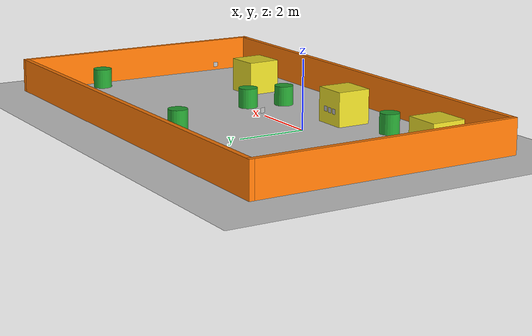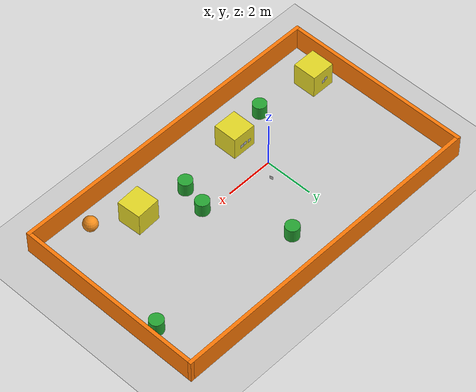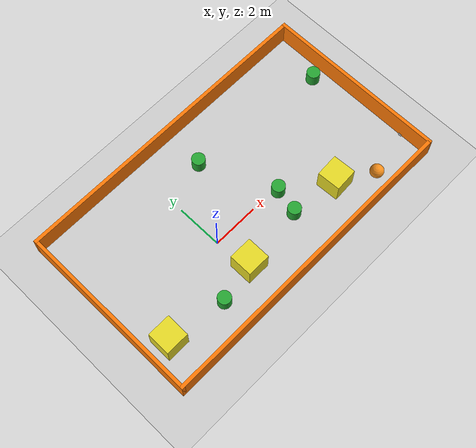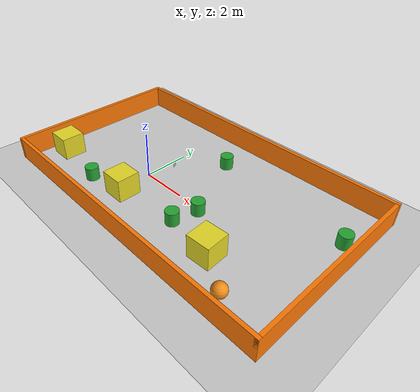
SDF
<sdf version="1.7">
 <world name="default">
  <light name="sun" type="directional">
   <pose>0 0 10 0 -0 0</pose>
   <diffuse>0.8 0.8 0.8 1</diffuse>
   <specular>0.2 0.2 0.2 1</specular>
   <attenuation>
    <range>1000</range>
    <constant>0.9</constant>
    <linear>0.01</linear>
    <quadratic>0.001</quadratic>
   </attenuation>
   <direction>-0.5 0.1 -0.9</direction>
   <spot><inner_angle>0</inner_angle><outer_angle>0</outer_angle><falloff>0</falloff></spot>
  </light>
  <model name="ground_plane">
   <static>1</static>
   <link name="link">
    <collision name="collision">
     <geometry><plane><normal>0 0 1</normal><size>100 100</size></plane></geometry>
     <surface><friction><ode><mu>100</mu><mu2>50</mu2></ode></friction></surface>
    </collision>
    <visual name="visual">
     <cast_shadows>0</cast_shadows>
     <geometry><plane><normal>0 0 1</normal><size>100 100</size></plane></geometry>
     <material>
      <script><uri>file://media/materials/scripts/gazebo.material</uri><name>Gazebo/Grey</name></script>
     </material>
    </visual>
   </link>
  </model>
  <gravity>0 0 -9.8</gravity>
  <magnetic_field>6e-06 2.3e-05 -4.2e-05</magnetic_field>
  <atmosphere type="adiabatic"/>
  <physics name="default_physics" default="0" type="ode">
   <max_step_size>0.001</max_step_size>
   <real_time_factor>1</real_time_factor>
   <real_time_update_rate>1000</real_time_update_rate>
  </physics>
  <scene><ambient>0.4 0.4 0.4 1</ambient><background>0.7 0.7 0.7 1</background><shadows>1</shadows></scene>
  <spherical_coordinates>
   <surface_model>EARTH_WGS84</surface_model>
   <latitude_deg>0</latitude_deg>
   <longitude_deg>0</longitude_deg>
   <elevation>0</elevation>
   <heading_deg>0</heading_deg>
  </spherical_coordinates>
  <model name="final_maze">
   <pose>1.8475 0.70908 0 0 -0 0</pose>
   <link name="Wall_0">
    <collision name="Wall_0_Collision">
     <geometry><box><size>8 0.15 1</size></box></geometry>
     <pose>0 0 0.5 0 -0 0</pose>
    </collision>
    <visual name="Wall_0_Visual">
     <pose>0 0 0.5 0 -0 0</pose>
     <geometry><box><size>8 0.15 1</size></box></geometry>
     <material>
      <script><uri>file://media/materials/scripts/gazebo.material</uri><name>Gazebo/Grey</name></script>
      <ambient>0.996078 0.47451 0.0196078 1</ambient>
     </material>
     <meta><layer>0</layer></meta>
    </visual>
    <pose>-6.8 0 0 0 -0 -1.5708</pose>
   </link>
   <link name="Wall_3">
    <collision name="Wall_3_Collision">
     <geometry><box><size>13.75 0.15 1</size></box></geometry>
     <pose>0 0 0.5 0 -0 0</pose>
    </collision>
    <visual name="Wall_3_Visual">
     <pose>0 0 0.5 0 -0 0</pose>
     <geometry><box><size>13.75 0.15 1</size></box></geometry>
     <material>
      <script><uri>file://media/materials/scripts/gazebo.material</uri><name>Gazebo/Grey</name></script>
      <ambient>0.996078 0.47451 0.0196078 1</ambient>
     </material>
     <meta><layer>0</layer></meta>
    </visual>
    <pose>-0 -3.925 0 0 -0 0</pose>
   </link>
   <link name="Wall_5">
    <collision name="Wall_5_Collision">
     <geometry><box><size>8 0.15 1</size></box></geometry>
     <pose>0 0 0.5 0 -0 0</pose>
    </collision>
    <visual name="Wall_5_Visual">
     <pose>0 0 0.5 0 -0 0</pose>
     <geometry><box><size>8 0.15 1</size></box></geometry>
     <material>
      <script><uri>file://media/materials/scripts/gazebo.material</uri><name>Gazebo/Grey</name></script>
      <ambient>0.996078 0.47451 0.0196078 1</ambient>
     </material>
     <meta><layer>0</layer></meta>
    </visual>
    <pose>6.8 0 0 0 -0 1.5708</pose>
   </link>
   <link name="Wall_6">
    <collision name="Wall_6_Collision">
     <geometry><box><size>13.75 0.15 1</size></box></geometry>
     <pose>0 0 0.5 0 -0 0</pose>
    </collision>
    <visual name="Wall_6_Visual">
     <pose>0 0 0.5 0 -0 0</pose>
     <geometry><box><size>13.75 0.15 1</size></box></geometry>
     <material>
      <script><uri>file://media/materials/scripts/gazebo.material</uri><name>Gazebo/Grey</name></script>
      <ambient>0.996078 0.47451 0.0196078 1</ambient>
     </material>
     <meta><layer>0</layer></meta>
    </visual>
    <pose>-0 3.925 0 0 -0 3.14159</pose>
   </link>
   <static>1</static>
  </model>
  <model name="unit_cylinder">
   <link name="link">
    <inertial>
     <mass>1</mass>
     <inertia><ixx>0.145833</ixx><ixy>0</ixy><ixz>0</ixz><iyy>0.145833</iyy><iyz>0</iyz><izz>0.125</izz></inertia>
    </inertial>
    <visual name="visual">
     <geometry><cylinder><radius>0.282119</radius><length>0.585064</length></cylinder></geometry>
     <material>
      <script><name>Gazebo/Green</name><uri>file://media/materials/scripts/gazebo.material</uri></script>
      <shader type="pixel"><normal_map>__default__</normal_map></shader>
      <ambient>0 1 0 1</ambient>
      <diffuse>0 1 0 1</diffuse>
      <specular>0.1 0.1 0.1 1</specular>
      <emissive>0 0 0 1</emissive>
     </material>
    </visual>
    <collision name="collision">
     <geometry><cylinder><radius>0.282119</radius><length>0.585064</length></cylinder></geometry>
     <surface>
      <friction>
       <ode><mu>1</mu><mu2>1</mu2><fdir1>0 0 0</fdir1><slip1>0</slip1><slip2>0</slip2></ode>
       <torsional>
        <coefficient>1</coefficient>
        <patch_radius>0</patch_radius>
        <surface_radius>0</surface_radius>
        <use_patch_radius>1</use_patch_radius>
        <ode><slip>0</slip></ode>
       </torsional>
      </friction>
      <bounce><restitution_coefficient>0</restitution_coefficient><threshold>1e+06</threshold></bounce>
      <contact>
       <collide_without_contact>0</collide_without_contact>
       <collide_without_contact_bitmask>1</collide_without_contact_bitmask>
       <collide_bitmask>1</collide_bitmask>
       <ode>
        <soft_cfm>0</soft_cfm>
        <soft_erp>0.2</soft_erp>
        <kp>1e+13</kp>
        <kd>1</kd>
        <max_vel>0.01</max_vel>
        <min_depth>0</min_depth>
       </ode>
       <bullet>
        <split_impulse>1</split_impulse>
        <split_impulse_penetration_threshold>-0.01</split_impulse_penetration_threshold>
        <soft_cfm>0</soft_cfm>
        <soft_erp>0.2</soft_erp>
        <kp>1e+13</kp>
        <kd>1</kd>
       </bullet>
      </contact>
     </surface>
    </collision>
   </link>
   <static>0</static>
   <pose>1.86573 2.90634 0.292527 -5e-06 -2e-06 0.476312</pose>
  </model>
  <model name="unit_cylinder_clone">
   <link name="link">
    <inertial>
     <mass>1</mass>
     <inertia><ixx>0.145833</ixx><ixy>0</ixy><ixz>0</ixz><iyy>0.145833</iyy><iyz>0</iyz><izz>0.125</izz></inertia>
    </inertial>
    <visual name="visual">
     <geometry><cylinder><radius>0.282119</radius><length>0.585064</length></cylinder></geometry>
     <material>
      <script><name>Gazebo/Green</name><uri>file://media/materials/scripts/gazebo.material</uri></script>
      <shader type="pixel"><normal_map>__default__</normal_map></shader>
      <ambient>0 1 0 1</ambient>
      <diffuse>0 1 0 1</diffuse>
      <specular>0.1 0.1 0.1 1</specular>
      <emissive>0 0 0 1</emissive>
     </material>
    </visual>
    <collision name="collision">
     <geometry><cylinder><radius>0.282119</radius><length>0.585064</length></cylinder></geometry>
     <surface>
      <friction>
       <ode><mu>1</mu><mu2>1</mu2><fdir1>0 0 0</fdir1><slip1>0</slip1><slip2>0</slip2></ode>
       <torsional>
        <coefficient>1</coefficient>
        <patch_radius>0</patch_radius>
        <surface_radius>0</surface_radius>
        <use_patch_radius>1</use_patch_radius>
        <ode><slip>0</slip></ode>
       </torsional>
      </friction>
      <bounce><restitution_coefficient>0</restitution_coefficient><threshold>1e+06</threshold></bounce>
      <contact>
       <collide_without_contact>0</collide_without_contact>
       <collide_without_contact_bitmask>1</collide_without_contact_bitmask>
       <collide_bitmask>1</collide_bitmask>
       <ode>
        <soft_cfm>0</soft_cfm>
        <soft_erp>0.2</soft_erp>
        <kp>1e+13</kp>
        <kd>1</kd>
        <max_vel>0.01</max_vel>
        <min_depth>0</min_depth>
       </ode>
       <bullet>
        <split_impulse>1</split_impulse>
        <split_impulse_penetration_threshold>-0.01</split_impulse_penetration_threshold>
        <soft_cfm>0</soft_cfm>
        <soft_erp>0.2</soft_erp>
        <kp>1e+13</kp>
        <kd>1</kd>
       </bullet>
      </contact>
     </surface>
    </collision>
   </link>
   <static>0</static>
   <pose>-1.48985 -1.86437 0.292525 -1e-06 -1e-06 0</pose>
  </model>
  <model name="unit_cylinder_clone_1">
   <link name="link">
    <inertial>
     <mass>1</mass>
     <inertia><ixx>0.145833</ixx><ixy>0</ixy><ixz>0</ixz><iyy>0.145833</iyy><iyz>0</iyz><izz>0.125</izz></inertia>
    </inertial>
    <visual name="visual">
     <geometry><cylinder><radius>0.282119</radius><length>0.585064</length></cylinder></geometry>
     <material>
      <script><name>Gazebo/Green</name><uri>file://media/materials/scripts/gazebo.material</uri></script>
      <shader type="pixel"><normal_map>__default__</normal_map></shader>
      <ambient>0 1 0 1</ambient>
      <diffuse>0 1 0 1</diffuse>
      <specular>0.1 0.1 0.1 1</specular>
      <emissive>0 0 0 1</emissive>
     </material>
    </visual>
    <collision name="collision">
     <geometry><cylinder><radius>0.282119</radius><length>0.585064</length></cylinder></geometry>
     <surface>
      <friction>
       <ode><mu>1</mu><mu2>1</mu2><fdir1>0 0 0</fdir1><slip1>0</slip1><slip2>0</slip2></ode>
       <torsional>
        <coefficient>1</coefficient>
        <patch_radius>0</patch_radius>
        <surface_radius>0</surface_radius>
        <use_patch_radius>1</use_patch_radius>
        <ode><slip>0</slip></ode>
       </torsional>
      </friction>
      <bounce><restitution_coefficient>0</restitution_coefficient><threshold>1e+06</threshold></bounce>
      <contact>
       <collide_without_contact>0</collide_without_contact>
       <collide_without_contact_bitmask>1</collide_without_contact_bitmask>
       <collide_bitmask>1</collide_bitmask>
       <ode>
        <soft_cfm>0</soft_cfm>
        <soft_erp>0.2</soft_erp>
        <kp>1e+13</kp>
        <kd>1</kd>
        <max_vel>0.01</max_vel>
        <min_depth>0</min_depth>
       </ode>
       <bullet>
        <split_impulse>1</split_impulse>
        <split_impulse_penetration_threshold>-0.01</split_impulse_penetration_threshold>
        <soft_cfm>0</soft_cfm>
        <soft_erp>0.2</soft_erp>
        <kp>1e+13</kp>
        <kd>1</kd>
       </bullet>
      </contact>
     </surface>
    </collision>
   </link>
   <static>0</static>
   <pose>3.23147 -0.165375 0.292532 0 -0 1.35779</pose>
  </model>
  <model name="unit_cylinder_clone_2">
   <link name="link">
    <inertial>
     <mass>1</mass>
     <inertia><ixx>0.145833</ixx><ixy>0</ixy><ixz>0</ixz><iyy>0.145833</iyy><iyz>0</iyz><izz>0.125</izz></inertia>
    </inertial>
    <visual name="visual">
     <geometry><cylinder><radius>0.282119</radius><length>0.585064</length></cylinder></geometry>
     <material>
      <script><name>Gazebo/Green</name><uri>file://media/materials/scripts/gazebo.material</uri></script>
      <shader type="pixel"><normal_map>__default__</normal_map></shader>
      <ambient>0 1 0 1</ambient>
      <diffuse>0 1 0 1</diffuse>
      <specular>0.1 0.1 0.1 1</specular>
      <emissive>0 0 0 1</emissive>
     </material>
    </visual>
    <collision name="collision">
     <geometry><cylinder><radius>0.282119</radius><length>0.585064</length></cylinder></geometry>
     <surface>
      <friction>
       <ode><mu>1</mu><mu2>1</mu2><fdir1>0 0 0</fdir1><slip1>0</slip1><slip2>0</slip2></ode>
       <torsional>
        <coefficient>1</coefficient>
        <patch_radius>0</patch_radius>
        <surface_radius>0</surface_radius>
        <use_patch_radius>1</use_patch_radius>
        <ode><slip>0</slip></ode>
       </torsional>
      </friction>
      <bounce><restitution_coefficient>0</restitution_coefficient><threshold>1e+06</threshold></bounce>
      <contact>
       <collide_without_contact>0</collide_without_contact>
       <collide_without_contact_bitmask>1</collide_without_contact_bitmask>
       <collide_bitmask>1</collide_bitmask>
       <ode>
        <soft_cfm>0</soft_cfm>
        <soft_erp>0.2</soft_erp>
        <kp>1e+13</kp>
        <kd>1</kd>
        <max_vel>0.01</max_vel>
        <min_depth>0</min_depth>
       </ode>
       <bullet>
        <split_impulse>1</split_impulse>
        <split_impulse_penetration_threshold>-0.01</split_impulse_penetration_threshold>
        <soft_cfm>0</soft_cfm>
        <soft_erp>0.2</soft_erp>
        <kp>1e+13</kp>
        <kd>1</kd>
       </bullet>
      </contact>
     </surface>
    </collision>
   </link>
   <static>0</static>
   <pose>8.00615 2.35358 0.292527 4e-06 5e-06 1.42852</pose>
  </model>
  <model name="unit_cylinder_clone_3">
   <link name="link">
    <inertial>
     <mass>1</mass>
     <inertia><ixx>0.145833</ixx><ixy>0</ixy><ixz>0</ixz><iyy>0.145833</iyy><iyz>0</iyz><izz>0.125</izz></inertia>
    </inertial>
    <visual name="visual">
     <geometry><cylinder><radius>0.282119</radius><length>0.585064</length></cylinder></geometry>
     <material>
      <script><name>Gazebo/Green</name><uri>file://media/materials/scripts/gazebo.material</uri></script>
      <shader type="pixel"><normal_map>__default__</normal_map></shader>
      <ambient>0 1 0 1</ambient>
      <diffuse>0 1 0 1</diffuse>
      <specular>0.1 0.1 0.1 1</specular>
      <emissive>0 0 0 1</emissive>
     </material>
    </visual>
    <collision name="collision">
     <geometry><cylinder><radius>0.282119</radius><length>0.585064</length></cylinder></geometry>
     <surface>
      <friction>
       <ode><mu>1</mu><mu2>1</mu2><fdir1>0 0 0</fdir1><slip1>0</slip1><slip2>0</slip2></ode>
       <torsional>
        <coefficient>1</coefficient>
        <patch_radius>0</patch_radius>
        <surface_radius>0</surface_radius>
        <use_patch_radius>1</use_patch_radius>
        <ode><slip>0</slip></ode>
       </torsional>
      </friction>
      <bounce><restitution_coefficient>0</restitution_coefficient><threshold>1e+06</threshold></bounce>
      <contact>
       <collide_without_contact>0</collide_without_contact>
       <collide_without_contact_bitmask>1</collide_without_contact_bitmask>
       <collide_bitmask>1</collide_bitmask>
       <ode>
        <soft_cfm>0</soft_cfm>
        <soft_erp>0.2</soft_erp>
        <kp>1e+13</kp>
        <kd>1</kd>
        <max_vel>0.01</max_vel>
        <min_depth>0</min_depth>
       </ode>
       <bullet>
        <split_impulse>1</split_impulse>
        <split_impulse_penetration_threshold>-0.01</split_impulse_penetration_threshold>
        <soft_cfm>0</soft_cfm>
        <soft_erp>0.2</soft_erp>
        <kp>1e+13</kp>
        <kd>1</kd>
       </bullet>
      </contact>
     </surface>
    </collision>
   </link>
   <static>0</static>
   <pose>2.97756 -1.25738 0.292529 1e-06 1e-06 0</pose>
  </model>
  <model name="aruco_marker_0">
   <static>0</static>
   <link name="link">
    <gravity>0</gravity>
    <inertial>
     <mass>0.001</mass>
     <inertia>
      <ixx>3.75e-06</ixx>
      <ixy>0</ixy>
      <ixz>0</ixz>
      <iyy>1.875e-06</iyy>
      <iyz>0</iyz>
      <izz>1.875e-06</izz>
     </inertia>
    </inertial>
    <visual name="front_visual">
     <pose>5e-05 0 0 0 -0 0</pose>
     <geometry><box><size>0.0001 0.15 0.15</size></box></geometry>
     <material>
      <script>
       <uri>model://aruco_marker_0/materials/scripts</uri>
       <uri>model://aruco_marker_0/materials/textures</uri>
       <name>aruco_marker_0</name>
      </script>
     </material>
    </visual>
    <visual name="rear_visual">
     <pose>-5e-05 0 0 0 -0 0</pose>
     <geometry><box><size>0.0001 0.15 0.15</size></box></geometry>
    </visual>
    <collision name="collision"><geometry><box><size>0.0001 0.15 0.15</size></box></geometry></collision>
   </link>
   <pose>0.34542 -0.986233 0.43168 0 0 -1.5707</pose>
  </model>
  <model name="aruco_marker_1">
   <static>0</static>
   <link name="link">
    <gravity>0</gravity>
    <inertial>
     <mass>0.001</mass>
     <inertia>
      <ixx>3.75e-06</ixx>
      <ixy>0</ixy>
      <ixz>0</ixz>
      <iyy>1.875e-06</iyy>
      <iyz>0</iyz>
      <izz>1.875e-06</izz>
     </inertia>
    </inertial>
    <visual name="front_visual">
     <pose>5e-05 0 0 0 -0 0</pose>
     <geometry><box><size>0.0001 0.15 0.15</size></box></geometry>
     <material>
      <script>
       <uri>model://aruco_marker_1/materials/scripts</uri>
       <uri>model://aruco_marker_1/materials/textures</uri>
       <name>aruco_marker_1</name>
      </script>
     </material>
    </visual>
    <visual name="rear_visual">
     <pose>-5e-05 0 0 0 -0 0</pose>
     <geometry><box><size>0.0001 0.15 0.15</size></box></geometry>
    </visual>
    <collision name="collision"><geometry><box><size>0.0001 0.15 0.15</size></box></geometry></collision>
   </link>
   <pose>-3.93233 -0.941869 0.529613 0 0 -1.5707</pose>
  </model>
  <model name="aruco_marker_2">
   <static>0</static>
   <link name="link">
    <gravity>0</gravity>
    <inertial>
     <mass>0.001</mass>
     <inertia>
      <ixx>3.75e-06</ixx>
      <ixy>0</ixy>
      <ixz>0</ixz>
      <iyy>1.875e-06</iyy>
      <iyz>0</iyz>
      <izz>1.875e-06</izz>
     </inertia>
    </inertial>
    <visual name="front_visual">
     <pose>5e-05 0 0 0 -0 0</pose>
     <geometry><box><size>0.0001 0.15 0.15</size></box></geometry>
     <material>
      <script>
       <uri>model://aruco_marker_2/materials/scripts</uri>
       <uri>model://aruco_marker_2/materials/textures</uri>
       <name>aruco_marker_2</name>
      </script>
     </material>
    </visual>
    <visual name="rear_visual">
     <pose>-5e-05 0 0 0 -0 0</pose>
     <geometry><box><size>0.0001 0.15 0.15</size></box></geometry>
    </visual>
    <collision name="collision"><geometry><box><size>0.0001 0.15 0.15</size></box></geometry></collision>
   </link>
   <pose>8.46068 -2 0.2 0 0 -3.14159</pose>
  </model>
  <model name="aruco_marker_3">
   <static>0</static>
   <link name="link">
    <gravity>0</gravity>
    <inertial>
     <mass>0.001</mass>
     <inertia>
      <ixx>3.75e-06</ixx>
      <ixy>0</ixy>
      <ixz>0</ixz>
      <iyy>1.875e-06</iyy>
      <iyz>0</iyz>
      <izz>1.875e-06</izz>
     </inertia>
    </inertial>
    <visual name="front_visual">
     <pose>5e-05 0 0 0 -0 0</pose>
     <geometry><box><size>0.0001 0.15 0.15</size></box></geometry>
     <material>
      <script>
       <uri>model://aruco_marker_3/materials/scripts</uri>
       <uri>model://aruco_marker_3/materials/textures</uri>
       <name>aruco_marker_3</name>
      </script>
     </material>
    </visual>
    <visual name="rear_visual">
     <pose>-5e-05 0 0 0 -0 0</pose>
     <geometry><box><size>0.0001 0.15 0.15</size></box></geometry>
    </visual>
    <collision name="collision"><geometry><box><size>0.0001 0.15 0.15</size></box></geometry></collision>
   </link>
   <pose>0.750985 0.839416 0.512839 0.002079 -0.005585 -2.92463</pose>
  </model>
  <model name="unit_box">
   <link name="link">
    <inertial>
     <mass>1</mass>
     <inertia>
      <ixx>0.166667</ixx>
      <ixy>0</ixy>
      <ixz>0</ixz>
      <iyy>0.166667</iyy>
      <iyz>0</iyz>
      <izz>0.166667</izz>
     </inertia>
    </inertial>
    <visual name="visual">
     <geometry><box><size>1 1 1</size></box></geometry>
     <material>
      <script><name>Gazebo/Yellow</name><uri>file://media/materials/scripts/gazebo.material</uri></script>
      <shader type="pixel"><normal_map>__default__</normal_map></shader>
      <ambient>1 1 0 1</ambient>
      <diffuse>1 1 0 1</diffuse>
      <emissive>0 0 0 1</emissive>
     </material>
    </visual>
    <collision name="collision">
     <geometry><box><size>1 1 1</size></box></geometry>
     <surface>
      <friction>
       <ode><mu>1</mu><mu2>1</mu2><fdir1>0 0 0</fdir1><slip1>0</slip1><slip2>0</slip2></ode>
       <torsional>
        <coefficient>1</coefficient>
        <patch_radius>0</patch_radius>
        <surface_radius>0</surface_radius>
        <use_patch_radius>1</use_patch_radius>
        <ode><slip>0</slip></ode>
       </torsional>
      </friction>
      <bounce><restitution_coefficient>0</restitution_coefficient><threshold>1e+06</threshold></bounce>
      <contact>
       <collide_without_contact>0</collide_without_contact>
       <collide_without_contact_bitmask>1</collide_without_contact_bitmask>
       <collide_bitmask>1</collide_bitmask>
       <ode>
        <soft_cfm>0</soft_cfm>
        <soft_erp>0.2</soft_erp>
        <kp>1e+13</kp>
        <kd>1</kd>
        <max_vel>0.01</max_vel>
        <min_depth>0</min_depth>
       </ode>
       <bullet>
        <split_impulse>1</split_impulse>
        <split_impulse_penetration_threshold>-0.01</split_impulse_penetration_threshold>
        <soft_cfm>0</soft_cfm>
        <soft_erp>0.2</soft_erp>
        <kp>1e+13</kp>
        <kd>1</kd>
       </bullet>
      </contact>
     </surface>
    </collision>
   </link>
   <static>0</static>
   <pose>-3.98543 -1.49501 0.499995 1e-05 0 -0.00133</pose>
  </model>
  <model name="unit_box_1">
   <link name="link">
    <inertial>
     <mass>1</mass>
     <inertia>
      <ixx>0.166667</ixx>
      <ixy>0</ixy>
      <ixz>0</ixz>
      <iyy>0.166667</iyy>
      <iyz>0</iyz>
      <izz>0.166667</izz>
     </inertia>
    </inertial>
    <visual name="visual">
     <geometry><box><size>1 1 1</size></box></geometry>
     <material>
      <script><name>Gazebo/Yellow</name><uri>file://media/materials/scripts/gazebo.material</uri></script>
      <shader type="pixel"><normal_map>__default__</normal_map></shader>
      <ambient>1 1 0 1</ambient>
      <diffuse>1 1 0 1</diffuse>
      <emissive>0 0 0 1</emissive>
     </material>
    </visual>
    <collision name="collision">
     <geometry><box><size>1 1 1</size></box></geometry>
     <surface>
      <friction>
       <ode><mu>1</mu><mu2>1</mu2><fdir1>0 0 0</fdir1><slip1>0</slip1><slip2>0</slip2></ode>
       <torsional>
        <coefficient>1</coefficient>
        <patch_radius>0</patch_radius>
        <surface_radius>0</surface_radius>
        <use_patch_radius>1</use_patch_radius>
        <ode><slip>0</slip></ode>
       </torsional>
      </friction>
      <bounce><restitution_coefficient>0</restitution_coefficient><threshold>1e+06</threshold></bounce>
      <contact>
       <collide_without_contact>0</collide_without_contact>
       <collide_without_contact_bitmask>1</collide_without_contact_bitmask>
       <collide_bitmask>1</collide_bitmask>
       <ode>
        <soft_cfm>0</soft_cfm>
        <soft_erp>0.2</soft_erp>
        <kp>1e+13</kp>
        <kd>1</kd>
        <max_vel>0.01</max_vel>
        <min_depth>0</min_depth>
       </ode>
       <bullet>
        <split_impulse>1</split_impulse>
        <split_impulse_penetration_threshold>-0.01</split_impulse_penetration_threshold>
        <soft_cfm>0</soft_cfm>
        <soft_erp>0.2</soft_erp>
        <kp>1e+13</kp>
        <kd>1</kd>
       </bullet>
      </contact>
     </surface>
    </collision>
   </link>
   <static>0</static>
   <pose>0.202358 -1.51471 0.499995 1e-05 -0 -0.001429</pose>
  </model>
  <model name="unit_box_2">
   <link name="link">
    <inertial>
     <mass>1</mass>
     <inertia>
      <ixx>0.166667</ixx>
      <ixy>0</ixy>
      <ixz>0</ixz>
      <iyy>0.166667</iyy>
      <iyz>0</iyz>
      <izz>0.166667</izz>
     </inertia>
    </inertial>
    <visual name="visual">
     <geometry><box><size>1 1 1</size></box></geometry>
     <material>
      <script><name>Gazebo/Yellow</name><uri>file://media/materials/scripts/gazebo.material</uri></script>
      <shader type="pixel"><normal_map>__default__</normal_map></shader>
      <ambient>1 1 0 1</ambient>
      <diffuse>1 1 0 1</diffuse>
      <emissive>0 0 0 1</emissive>
     </material>
    </visual>
    <collision name="collision">
     <geometry><box><size>1 1 1</size></box></geometry>
     <surface>
      <friction>
       <ode><mu>1</mu><mu2>1</mu2><fdir1>0 0 0</fdir1><slip1>0</slip1><slip2>0</slip2></ode>
       <torsional>
        <coefficient>1</coefficient>
        <patch_radius>0</patch_radius>
        <surface_radius>0</surface_radius>
        <use_patch_radius>1</use_patch_radius>
        <ode><slip>0</slip></ode>
       </torsional>
      </friction>
      <bounce><restitution_coefficient>0</restitution_coefficient><threshold>1e+06</threshold></bounce>
      <contact>
       <collide_without_contact>0</collide_without_contact>
       <collide_without_contact_bitmask>1</collide_without_contact_bitmask>
       <collide_bitmask>1</collide_bitmask>
       <ode>
        <soft_cfm>0</soft_cfm>
        <soft_erp>0.2</soft_erp>
        <kp>1e+13</kp>
        <kd>1</kd>
        <max_vel>0.01</max_vel>
        <min_depth>0</min_depth>
       </ode>
       <bullet>
        <split_impulse>1</split_impulse>
        <split_impulse_penetration_threshold>-0.01</split_impulse_penetration_threshold>
        <soft_cfm>0</soft_cfm>
        <soft_erp>0.2</soft_erp>
        <kp>1e+13</kp>
        <kd>1</kd>
       </bullet>
      </contact>
     </surface>
    </collision>
   </link>
   <static>0</static>
   <pose>5.06215 -1.50992 0.499995 -1e-05 -0 0.055634</pose>
  </model>
  <model name="unit_sphere">
   <link name="link">
    <inertial>
     <mass>1</mass>
     <inertia><ixx>0.1</ixx><ixy>0</ixy><ixz>0</ixz><iyy>0.1</iyy><iyz>0</iyz><izz>0.1</izz></inertia>
    </inertial>
    <visual name="visual">
     <geometry><sphere><radius>0.291395</radius></sphere></geometry>
     <material>
      <script><name>Gazebo/Orange</name><uri>file://media/materials/scripts/gazebo.material</uri></script>
      <shader type="pixel"><normal_map>__default__</normal_map></shader>
      <ambient>1 0.509 0.047 1</ambient>
      <diffuse>1 0.509 0.047 1</diffuse>
      <specular>0.5 0.5 0.5 1</specular>
      <emissive>0 0 0 1</emissive>
     </material>
    </visual>
    <collision name="collision">
     <geometry><sphere><radius>0.291395</radius></sphere></geometry>
     <surface>
      <friction>
       <ode><mu>1</mu><mu2>1</mu2><fdir1>0 0 0</fdir1><slip1>0</slip1><slip2>0</slip2></ode>
       <torsional>
        <coefficient>1</coefficient>
        <patch_radius>0</patch_radius>
        <surface_radius>0</surface_radius>
        <use_patch_radius>1</use_patch_radius>
        <ode><slip>0</slip></ode>
       </torsional>
      </friction>
      <bounce><restitution_coefficient>0</restitution_coefficient><threshold>1e+06</threshold></bounce>
      <contact>
       <collide_without_contact>0</collide_without_contact>
       <collide_without_contact_bitmask>1</collide_without_contact_bitmask>
       <collide_bitmask>1</collide_bitmask>
       <ode>
        <soft_cfm>0</soft_cfm>
        <soft_erp>0.2</soft_erp>
        <kp>1e+13</kp>
        <kd>1</kd>
        <max_vel>0.01</max_vel>
        <min_depth>0</min_depth>
       </ode>
       <bullet>
        <split_impulse>1</split_impulse>
        <split_impulse_penetration_threshold>-0.01</split_impulse_penetration_threshold>
        <soft_cfm>0</soft_cfm>
        <soft_erp>0.2</soft_erp>
        <kp>1e+13</kp>
        <kd>1</kd>
       </bullet>
      </contact>
     </surface>
    </collision>
   </link>
   <static>0</static>
   <pose>6.53534 -2.42522 0.291395 0 -0 0</pose>
  </model>
  <audio><device>default</device></audio>
  <model name="aruco_marker_1_clone">
   <static>0</static>
   <link name="link">
    <gravity>0</gravity>
    <inertial>
     <mass>0.001</mass>
     <inertia>
      <ixx>3.75e-06</ixx>
      <ixy>0</ixy>
      <ixz>0</ixz>
      <iyy>1.875e-06</iyy>
      <iyz>0</iyz>
      <izz>1.875e-06</izz>
     </inertia>
    </inertial>
    <visual name="front_visual">
     <pose>5e-05 0 0 0 -0 0</pose>
     <geometry><box><size>0.0001 0.15 0.15</size></box></geometry>
     <material>
      <script>
       <uri>model://aruco_marker_1/materials/scripts</uri>
       <uri>model://aruco_marker_1/materials/textures</uri>
       <name>aruco_marker_1</name>
      </script>
     </material>
    </visual>
    <visual name="rear_visual">
     <pose>-5e-05 0 0 0 -0 0</pose>
     <geometry><box><size>0.0001 0.15 0.15</size></box></geometry>
    </visual>
    <collision name="collision"><geometry><box><size>0.0001 0.15 0.15</size></box></geometry></collision>
   </link>
   <pose>-4.12977 -0.992253 0.515453 0 0 -1.5707</pose>
  </model>
  <model name="aruco_marker_0_clone">
   <static>0</static>
   <link name="link">
    <gravity>0</gravity>
    <inertial>
     <mass>0.001</mass>
     <inertia>
      <ixx>3.75e-06</ixx>
      <ixy>0</ixy>
      <ixz>0</ixz>
      <iyy>1.875e-06</iyy>
      <iyz>0</iyz>
      <izz>1.875e-06</izz>
     </inertia>
    </inertial>
    <visual name="front_visual">
     <pose>5e-05 0 0 0 -0 0</pose>
     <geometry><box><size>0.0001 0.15 0.15</size></box></geometry>
     <material>
      <script>
       <uri>model://aruco_marker_0/materials/scripts</uri>
       <uri>model://aruco_marker_0/materials/textures</uri>
       <name>aruco_marker_0</name>
      </script>
     </material>
    </visual>
    <visual name="rear_visual">
     <pose>-5e-05 0 0 0 -0 0</pose>
     <geometry><box><size>0.0001 0.15 0.15</size></box></geometry>
    </visual>
    <collision name="collision"><geometry><box><size>0.0001 0.15 0.15</size></box></geometry></collision>
   </link>
   <pose>0.165119 -1.00996 0.413849 0 0 -1.5707</pose>
  </model>
  <model name="aruco_marker_0_clone_0">
   <static>0</static>
   <link name="link">
    <gravity>0</gravity>
    <inertial>
     <mass>0.001</mass>
     <inertia>
      <ixx>3.75e-06</ixx>
      <ixy>0</ixy>
      <ixz>0</ixz>
      <iyy>1.875e-06</iyy>
      <iyz>0</iyz>
      <izz>1.875e-06</izz>
     </inertia>
    </inertial>
    <visual name="front_visual">
     <pose>5e-05 0 0 0 -0 0</pose>
     <geometry><box><size>0.0001 0.15 0.15</size></box></geometry>
     <material>
      <script>
       <uri>model://aruco_marker_0/materials/scripts</uri>
       <uri>model://aruco_marker_0/materials/textures</uri>
       <name>aruco_marker_0</name>
      </script>
     </material>
    </visual>
    <visual name="rear_visual">
     <pose>-5e-05 0 0 0 -0 0</pose>
     <geometry><box><size>0.0001 0.15 0.15</size></box></geometry>
    </visual>
    <collision name="collision"><geometry><box><size>0.0001 0.15 0.15</size></box></geometry></collision>
   </link>
   <pose>-0.042825 -0.998644 0.415056 0 0 -1.5707</pose>
  </model>
 </world>
</sdf>
